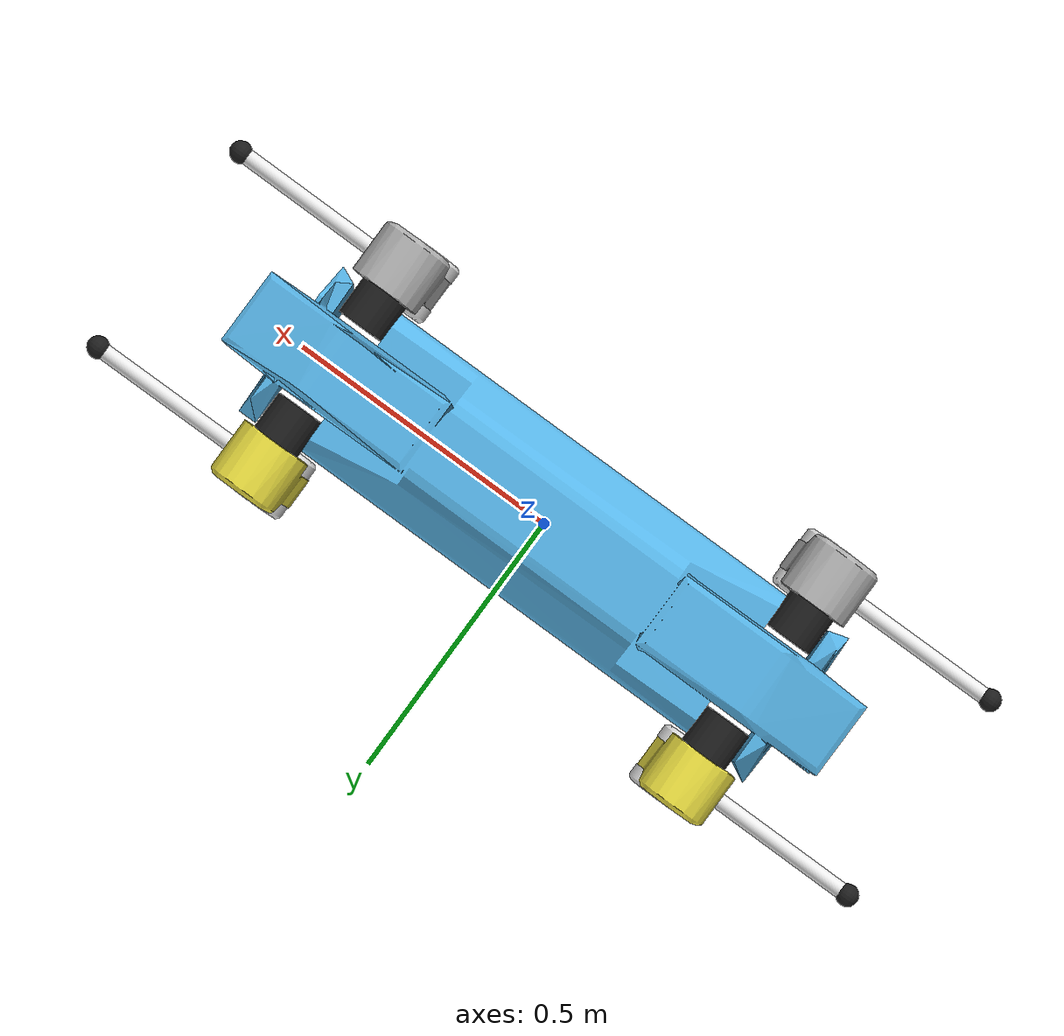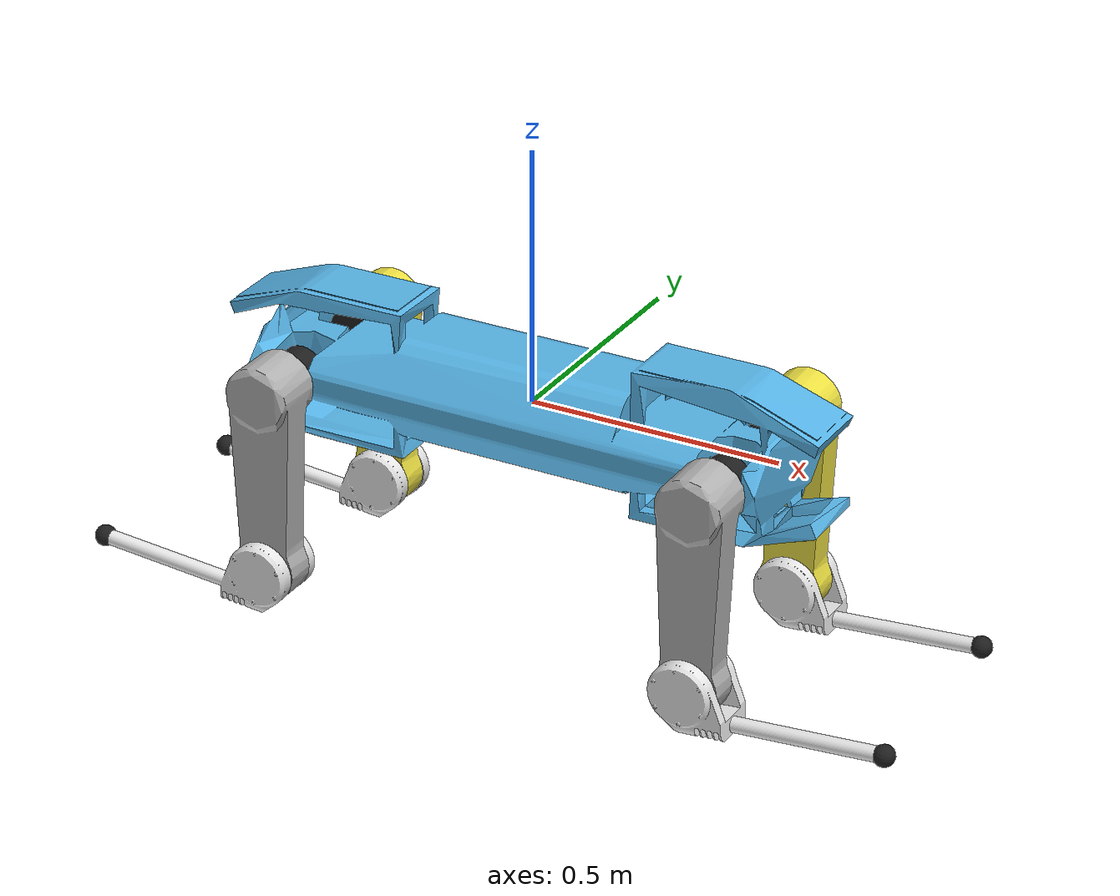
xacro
<?xml version="1.0"?>

<robot name="hyq" xmlns:xacro="http://ros.org/wiki/xacro">

	<!-- The following included files set up definitions of parts of the robot body -->
	<xacro:include filename="$(find hyq2max_description)/urdfs/common.xacro"/>
	<!-- HyQ2Max torso -->
	<xacro:include filename="$(find hyq2max_description)/urdfs/trunk/trunk_model.urdf.xacro"/>

	<!-- HyQ2Max legs -->
	<xacro:include filename="$(find hyq2max_description)/urdfs/leg/leg.urdf.xacro"/>

	<!-- Generic simulator_gazebo plugins for starting mechanism control, ros time -->
	<xacro:include filename="$(find hyq2max_description)/gazebo/gazebo.urdf.xacro"/>

	<!-- Now we can start using the macros included above to define the actual HyQ2Max -->

	<!-- Body -->
	<!-- Trunk -->
	<xacro:hyq2max_trunk name="base">
	</xacro:hyq2max_trunk>

	<!-- LF leg -->
	<xacro:hyq2max_leg
		name="lf"
		parent="trunk"
		reflect_left="1"
		reflect_front="1"
		load_force_sensors="false">
		<origin xyz="${haa_fh/2} ${haa_lr/2} 0" rpy="${PI} ${PI/2} 0"/>
	</xacro:hyq2max_leg>

	<!-- RF leg -->
	<xacro:hyq2max_leg
		name="rf"
		parent="trunk"
		reflect_left="-1"
		reflect_front="1"
		load_force_sensors="false">
		<origin xyz="${haa_fh/2} ${-haa_lr/2} 0" rpy="0 ${PI/2} 0"/>
	</xacro:hyq2max_leg>

	<!-- LH leg -->
	<xacro:hyq2max_leg
		name="lh"
		parent="trunk"
		reflect_left="1"
		reflect_front="-1"
		load_force_sensors="false">
		<origin xyz="${-haa_fh/2} ${haa_lr/2} 0" rpy="${PI} ${PI/2} 0"/>
	</xacro:hyq2max_leg>

	<!-- RH leg -->
	<xacro:hyq2max_leg
		name="rh"
		parent="trunk"
		reflect_left="-1"
		reflect_front="-1"
		load_force_sensors="false">
		<origin xyz="${-haa_fh/2} ${-haa_lr/2} 0" rpy="0 ${PI/2} 0"/>
	</xacro:hyq2max_leg>

</robot>

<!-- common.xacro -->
<robot xmlns:xacro="http://ros.org/wiki/xacro">

	<xacro:property name="PI" value="3.1415926535897931"/>

	<!-- standard distances -->
	<xacro:property name="d_lr" value="0.414"/>
	<xacro:property name="d_fh" value="0.747"/>

	<xacro:property name="haa_lr" value="0.194"/>
	<xacro:property name="haa_fh" value="0.887"/>

	<xacro:property name="trunkScale_width" value="${haa_lr/0.194}"/>
	<xacro:property name="trunkScale_length" value="${haa_fh/0.887}"/>

	<xacro:property name="hipassembly_length" value="0.117"/>
	<xacro:property name="upperleg_length" value="0.360"/>
    <xacro:property name="lowerleg_length" value="0.380"/>

	<!-- Knee offset angel in degree -->
	<xacro:property name="knee_offset_angle" value="10."/>

	<!-- Inertial values -->
	<!-- Trunk with hydraulic system -->
	<xacro:property name="xcom_trunk" value="0.060663"/>
	<xacro:property name="ycom_trunk" value="0.000598"/>
	<xacro:property name="zcom_trunk" value="-0.007592"/>
	<xacro:property name="m_trunk" value="39.71"/>
	<xacro:property name="ixx_trunk" value="0.3020795"/>
	<xacro:property name="iyy_trunk" value="4.751448"/>
	<xacro:property name="izz_trunk" value="4.82415"/>
	<xacro:property name="ixy_trunk" value="-0.0050854"/>
	<xacro:property name="ixz_trunk" value="0.0046576"/>
	<xacro:property name="iyz_trunk" value="-0.0017613"/>

	<!-- Hip assembly -->
	<xacro:property name="xcom_hipassembly" value="-0.000605"/>
	<xacro:property name="ycom_hipassembly" value="-0.001346"/>
	<xacro:property name="zcom_hipassembly" value="0.000196"/>
	<xacro:property name="m_hipassembly" value="3.54"/>
	<xacro:property name="ixx_hipassembly" value="0.007379"/>
	<xacro:property name="iyy_hipassembly" value="0.004284"/>
	<xacro:property name="izz_hipassembly" value="0.007090"/>
	<xacro:property name="ixy_hipassembly" value="-0.000053"/>
	<xacro:property name="ixz_hipassembly" value="0.000017"/>
	<xacro:property name="iyz_hipassembly" value="0.000030"/>
	<!-- Upper leg -->
	<xacro:property name="xcom_upperleg" value="0.144296"/>
	<xacro:property name="ycom_upperleg" value="-0.002071"/>
	<xacro:property name="zcom_upperleg" value="-0.005094"/>
	<xacro:property name="m_upperleg" value="4.95"/>
	<xacro:property name="ixx_upperleg" value="0.010196"/>
	<xacro:property name="iyy_upperleg" value="0.204183"/>
	<xacro:property name="izz_upperleg" value="0.207532"/>
	<xacro:property name="ixy_upperleg" value="-0.002320"/>
	<xacro:property name="ixz_upperleg" value="-0.000141"/>
	<xacro:property name="iyz_upperleg" value="0.000034"/>
	<!-- Lower leg -->
	<xacro:property name="xcom_lowerleg" value="0.109015"/>
	<xacro:property name="ycom_lowerleg" value="0.042147"/>
	<xacro:property name="zcom_lowerleg" value="0.000219"/>
	<xacro:property name="m_lowerleg" value="1.71"/>
	<xacro:property name="ixx_lowerleg" value="0.006848"/>
	<xacro:property name="iyy_lowerleg" value="0.055957"/>
	<xacro:property name="izz_lowerleg" value="0.059397"/>
	<xacro:property name="ixy_lowerleg" value="0.011981"/>
	<xacro:property name="ixz_lowerleg" value="0.000008"/>
	<xacro:property name="iyz_lowerleg" value="0.000012"/>

</robot>

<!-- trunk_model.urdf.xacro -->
<robot xmlns:xacro="http://ros.org/wiki/xacro">

	<!-- Things that are needed only for Gazebo (not the physical robot). These include sensor and controller plugin specifications -->
	<xacro:include filename="$(find hyq2max_description)/urdfs/trunk/trunk.gazebo.xacro"/>

	<!-- ================================ Trunk ================================ -->
	<!-- The xacro macro xacro:hyq_base contains: base and trunk -->
	<xacro:macro name="hyq2max_trunk" params="name">
		<!-- Floating-base Joint -->
		<joint name="floating_base" type="floating">
			<origin xyz="0 0 0" rpy="0 0 0"/>
			<parent link="${name}_link"/>
			<child link="trunk"/>
		</joint>

		<!-- Links -->
		<!-- Footprint link -->
		<link name="${name}_link">
			<visual>
				<geometry>
					<cylinder length="0.01" radius="0.01"/>
				</geometry>
			</visual>
		</link>
		<!-- Trunk link -->
		<link name="trunk">
			<inertial>
				<origin xyz="${xcom_trunk} ${ycom_trunk} ${zcom_trunk}"/>
				<mass value="${m_trunk}"/>
				<inertia ixx="${ixx_trunk}" iyy="${iyy_trunk}" izz="${izz_trunk}"
						 ixy="${ixy_trunk}" ixz="${ixz_trunk}" iyz="${iyz_trunk}"/>
			</inertial>
			<visual>
				<origin xyz="0 0 0" rpy="${PI/2} 0 ${PI/2}" />
				<geometry>
					<mesh filename="package://hyq2max_description/meshes/trunk/trunk.dae" scale="${trunkScale_width} 1 ${trunkScale_length}"/>
				</geometry>
			</visual>
			<collision>
				<origin xyz="0 0 0" rpy="${PI/2} 0 ${PI/2}" />
				<geometry>
					<mesh filename="package://hyq2max_description/meshes/trunk/trunk.dae" scale="${trunkScale_width} 1 ${trunkScale_length}"/>
				</geometry>
			</collision>
		</link>

		<!-- Extensions -->
		<xacro:trunk_gazebo name="trunk"/>
	</xacro:macro>

</robot>

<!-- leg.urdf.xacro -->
<robot xmlns:xacro="http://ros.org/wiki/xacro">

	<!-- Things that are needed only for Gazebo (not the physical robot). These include sensor and controller plugin specifications -->
	<xacro:include filename="$(find hyq2max_description)/urdfs/leg/leg.transmission.xacro"/>
	<xacro:include filename="$(find hyq2max_description)/urdfs/leg/leg.gazebo.xacro"/>

	<!-- ================================== Leg ================================== -->
	<!-- The xacro macro xacro:hyq2max_leg contains: hip assembly, upper and lower leg -->
	<xacro:macro name="hyq2max_leg" params="name parent *origin reflect_left reflect_front load_force_sensors">
		<!-- Joints -->
		<!-- HAA joint -->
		<joint name="${name}_haa_joint" type="revolute">
			<xacro:insert_block name="origin"/>
			<parent link="${parent}"/>
			<child  link="${name}_hipassembly"/>
			<axis xyz="0 0 1"/>
			<dynamics damping="0.1" friction="0" />
			<limit effort="120.0" velocity="12.0" lower="${-2*PI/9}" upper="${2*PI/9}"/>
			<safety_controller k_position="100" k_velocity="100"
							   soft_lower_limit="${-2*PI/9}" soft_upper_limit="${2*PI/9}" />
		</joint>
		<!-- HFE joint -->
		<joint name="${name}_hfe_joint" type="revolute">
			<origin xyz="0 ${-hipassembly_length} 0"
					rpy="${reflect_left*PI/2} 0 0"/>
			<parent link="${name}_hipassembly"/>
			<child  link="${name}_upperleg"/>
			<axis xyz="0 0 1"/>
			<dynamics damping="0.1" friction="0" />
			<limit effort="245.0" velocity="12.0" lower="${-3*PI/4}" upper="${3*PI/4}"/>
			<safety_controller k_position="100" k_velocity="100"
							   soft_lower_limit="${-3*PI/4}" soft_upper_limit="${3*PI/4}" />
		</joint>
		<!-- KFE joint -->
		<joint name="${name}_kfe_joint" type="revolute">
			<origin xyz="${upperleg_length} 0 0" rpy="0 0 0"/>
			<parent link="${name}_upperleg"/>
			<child  link="${name}_lowerleg"/>
			<axis xyz="0 0 1"/>
			<dynamics damping="0.1" friction="0" />
            <limit effort="250.0" velocity="12.0"
                   lower="${(1-reflect_front)*2*PI/360-(1+reflect_front)*167*PI/360}"
                   upper="${-(1+reflect_front)*2*PI/360+(1-reflect_front)*167*PI/360}"/>
            <safety_controller k_position="100" k_velocity="100"
                               soft_lower_limit="${(1-reflect_front)*2*PI/360-(1+reflect_front)*167*PI/360}"
                               soft_upper_limit="${-(1+reflect_front)*2*PI/360+(1-reflect_front)*167*PI/360}" />
		</joint>
		<!-- Foot joint -->
		<joint name="${name}_foot_joint" type="fixed">
			<origin xyz="${lowerleg_length} 0 0" rpy="${PI/2} 0 ${-PI/2}"/>
			<parent link="${name}_lowerleg"/>
			<child  link="${name}_foot"/>
		</joint>

		<!-- Links -->
		<!-- Hip assembly link -->
		<link name="${name}_hipassembly">
			<inertial>
				<origin xyz="${xcom_hipassembly} ${ycom_hipassembly} ${zcom_hipassembly}"/>
				<mass value="${m_hipassembly}"/>
				<inertia ixx="${ixx_hipassembly}" iyy="${iyy_hipassembly}" izz="${izz_hipassembly}"
						 ixy="${ixy_hipassembly}" ixz="${ixz_hipassembly}" iyz="${iyz_hipassembly}"/>
			</inertial>
			<visual>
				<origin xyz="0 -0.046 0" rpy="0 ${-PI/2} ${-PI/2}"/>
				<geometry>
				<cylinder length="0.117" radius="0.0444"/>
				</geometry>
                                <material name="black"/>
			</visual>

			<collision>
				<origin xyz="0 -0.046 0" rpy="0 ${-PI/2} ${-PI/2}"/>
				<geometry>
				<cylinder length="0.117" radius="0.0444"/>
				</geometry>
			</collision>
		</link>
		<gazebo reference="${name}_hipassembly">
            		<material>Gazebo/Black</material>
	        </gazebo>
		<!-- Upper leg link -->
		<link name="${name}_upperleg">
			<inertial>
				<origin xyz="${xcom_upperleg} ${reflect_front*ycom_upperleg} ${reflect_left*zcom_upperleg}"/>
				<mass value="${m_upperleg}"/>
				<inertia ixx="${ixx_upperleg}" iyy="${iyy_upperleg}" izz="${izz_upperleg}"
						 ixy="${reflect_front*ixy_upperleg}" ixz="${reflect_left*ixz_upperleg}" iyz="${reflect_left*reflect_front*iyz_upperleg}"/>
			</inertial>
			<visual>
				<origin xyz="0 0 ${-0.03*reflect_left}" rpy="${(1-reflect_left)*PI/2} 0 0"/>
				<geometry>
					<mesh filename="package://hyq2max_description/meshes/leg/upperleg.dae" scale="1 1 1"/>
				</geometry>
			</visual>
			<collision>
				<origin xyz="0 0 ${-0.03*reflect_left}" rpy="${(1-reflect_left)*PI/2} 0 0"/>
				<geometry>
					<mesh filename="package://hyq2max_description/meshes/leg/upperleg.dae" scale="1 1 1"/>
				</geometry>
			</collision>
		</link>
		<!-- Lower leg link -->
		<link name="${name}_lowerleg">
			<inertial>
				<origin xyz="${xcom_lowerleg} ${reflect_front*ycom_lowerleg} ${reflect_front*zcom_lowerleg}"/>
				<mass value="${m_lowerleg}"/>
				<inertia ixx="${ixx_lowerleg}" iyy="${iyy_lowerleg}" izz="${izz_lowerleg}"
						 ixy="${reflect_front*ixy_lowerleg}" ixz="${reflect_front*ixz_lowerleg}" iyz="${iyz_lowerleg}"/>
			</inertial>
			<visual>
				<origin xyz="0 0 0" rpy="${(1-reflect_front)*PI/2} 0 ${PI-reflect_front*knee_offset_angle*PI/180}"/>
				<geometry>
					<mesh filename="package://hyq2max_description/meshes/leg/lowerleg.dae" scale="1 1 1"/>
				</geometry>
				<material name="white"/>
			</visual>
			<collision>
				<origin xyz="0 0 0" rpy="${(1-reflect_front)*PI/2} 0 ${PI-reflect_front*knee_offset_angle*PI/180}"/>
				<geometry>
					<mesh filename="package://hyq2max_description/meshes/leg/lowerleg.dae" scale="1 1 1"/>
				</geometry>
			</collision>
		</link>
		<!-- Foot link -->
		<link name="${name}_foot">
			<inertial>
				<origin xyz="0 0 0"/>
				<mass value="0.0"/>
				<inertia ixx="0.0" iyy="0.0" izz="0.0" ixy="0.0" ixz="0.0" iyz="0.0"/>
			</inertial>
			<visual>
				<origin xyz="0.0 0.0 0.0" rpy="0.0 0.0 0.0"/>
				<geometry>
					<sphere radius="0.021"/>
				</geometry>
                                <material name="black"/>
			</visual>
			<collision>
				<origin xyz="0 0 0" rpy="0 0 0"/>
				<geometry>
					<sphere radius="0.02175"/>
				</geometry>
			</collision>
		</link>
                <gazebo reference="${name}_foot">
                	<mu1>1</mu1>
					<mu2>1</mu2>
					<fdir1>1 0 0</fdir1>
					<maxContacts>1</maxContacts>
                    <minDepth>0.005</minDepth>
                    <gravity>true</gravity>
                	<material>Gazebo/Black</material>
                </gazebo>

		<!-- Extensions -->
		<xacro:leg_transmission name="${name}"/>
		<xacro:leg_gazebo name="${name}" load_force_sensors="${load_force_sensors}"/>
	</xacro:macro>

</robot>
